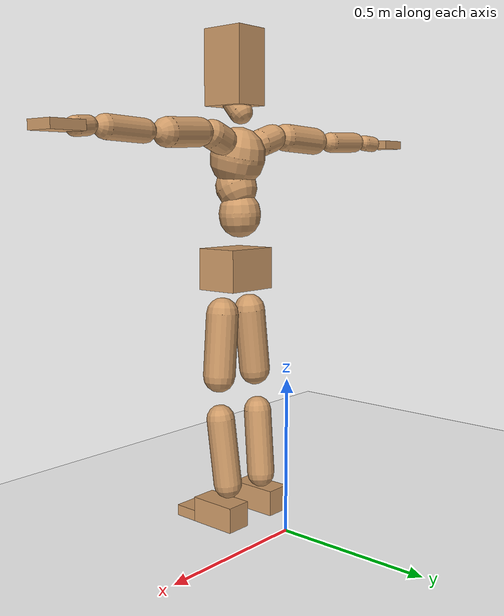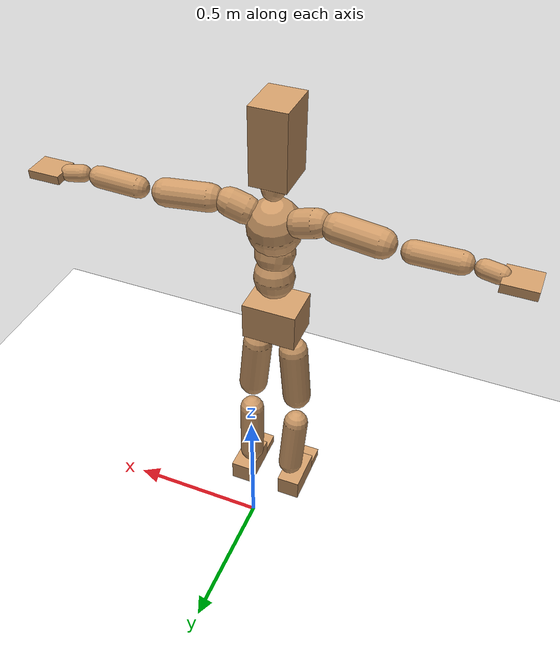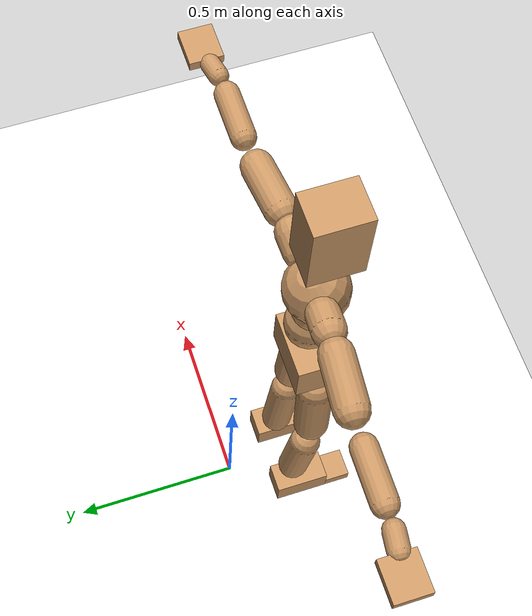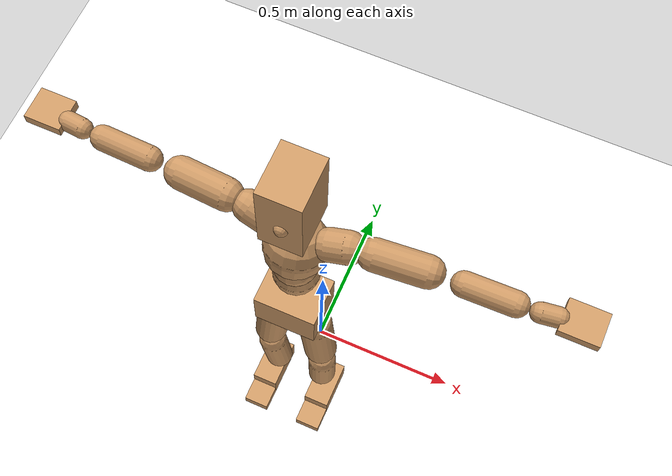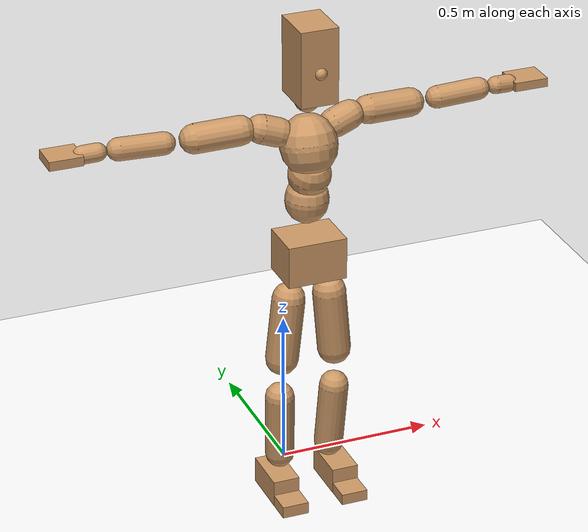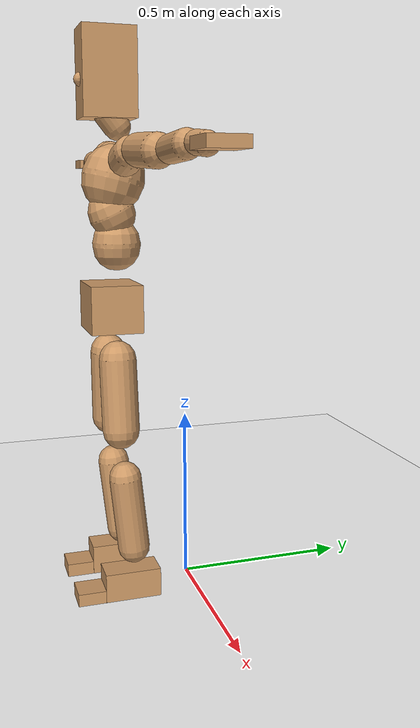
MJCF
<mujoco model="humanoid">
  <option integrator="implicitfast" />

  <visual>
    <global offwidth="1280" offheight="960" />
    <headlight active="1" ambient="0.34 0.34 0.34" diffuse="0.5 0.5 0.5" />
  </visual>

  <default>
    <joint damping="2" stiffness="2" armature="0.01" limited="true" solimplimit="0 .99 .01" />
    <geom condim="1" friction="0.7 0.005 0.0001" solimp=".99 .99 .003" solref="0.015 1" margin="0.001" rgba="0.8 0.6 .4 1" />
    <default class="smplcontact">
      <geom condim="3" friction="1. 0.005 0.0001" solref="0.015 1" solimp="0.98 0.98 0.001" priority="1" />
    </default>
    <default class="stiff_medium">
      <joint stiffness="10" />
    </default>
    <default class="stiff_medium_higher">
      <joint stiffness="50" />
    </default>
    <default class="stiff_high">
      <joint stiffness="100" />
    </default>
  </default>

  <asset>
    <texture type="skybox" builtin="gradient" rgb1="0.99 0.99 0.99" rgb2="0.608 0.828 0.892" width="100" />
    <texture builtin="flat" height="1278" mark="cross" markrgb="1 1 1" name="texgeom" random="0.01" rgb1="0.8 0.6 0.4" rgb2="0.8 0.6 0.4" type="cube" width="127" />
    <texture name="texplane" type="2d" builtin="checker" markrgb="1 1 1" rgb1="0.756 0.772 0.76" rgb2="0.6 0.6 0.6" width="100" height="100" />
    <material name="MatPlane" reflectance="0.5" texture="texplane" texrepeat="1 1" texuniform="true" />
    <material name="geom" texture="texgeom" texuniform="true" />
  </asset>

  <worldbody>
    <light name="tracking_light" pos="0 0 7" dir="0 0 -1" directional="true" cutoff="100" exponent="1" diffuse="1 1 1" specular="0.1 0.1 0.1" mode="trackcom" />
    <camera name="back" pos="0 3 2.4" xyaxes="-1 0 0 0 -1 2" mode="trackcom" />
    <camera name="side" pos="-3 0 2.4" xyaxes="0 -1 0 1 0 2" mode="trackcom" />
    <camera name="front_side" pos="-2.8 -2.8 0.8" xyaxes="0.5 -0.5 0 0.1 0.1 1" mode="trackcom" />
    <geom condim="3" name="floor" pos="0 0 0" rgba="1 1 1 1" size="100 100 .2" type="plane" material="MatPlane" />
    <body name="Pelvis" pos="-0.0018 -0.2233 0.850186" euler="90 0 0">
      <site name="Pelvis" size="0.01" />
      <freejoint name="Pelvis" />
      <geom type="box" pos="0 -0.0113472 -0.00487135" size="0.0946813 0.0677079 0.0735131" quat="1.0000 0.0000 0.0000 0.0000" density="3165.830099" name="Pelvis" />
      <body name="L_Hip" pos="0.0615562 -0.0857133 -0.00602276">
        <joint name="L_Hip_x" type="hinge" pos="0 0 0" axis="1 0 0" stiffness="10" range="-160.0 22.92" class="stiff_medium" damping="15" />
        <joint name="L_Hip_y" type="hinge" pos="0 0 0" axis="0 1 0" stiffness="10" range="-70.0 70.0" class="stiff_medium" damping="10" />
        <joint name="L_Hip_z" type="hinge" pos="0 0 0" axis="0 0 1" stiffness="10" range="-28.65 90.0" class="stiff_medium" damping="10" />
        <geom type="capsule" density="2040.816327" fromto="0.0062476 -0.0679485 -0.000815342 0.0248201 -0.271974 -0.00326148" size="0.0526256" name="L_Hip" />
        <body name="L_Knee" pos="0.0310677 -0.339923 -0.00407682">
          <joint name="L_Knee_x" type="hinge" pos="0 0 0" axis="1 0 0" range="-5.16 171.89" damping="8" />
          <joint name="L_Knee_y" type="hinge" pos="0 0 0" axis="0 1 0" range="-4.58 6.88" damping="8" />
          <joint name="L_Knee_z" type="hinge" pos="0 0 0" axis="0 0 1" range="-6.88 4.58" damping="8" />
          <geom type="capsule" density="1234.567901" fromto="-0.0024478 -0.0721152 -0.00788529 -0.0098768 -0.288462 -0.0317125" size="0.0462934" name="L_Knee" />
          <body name="L_Ankle" pos="-0.0123246 -0.360577 -0.0395977">
            <joint name="L_Ankle_x" type="hinge" pos="0 0 0" axis="1 0 0" range="-45.84 45.84" class="stiff_medium" damping="6" />
            <joint name="L_Ankle_y" type="hinge" pos="0 0 0" axis="0 1 0" range="-74.48 22.92" class="stiff_medium" damping="3" />
            <joint name="L_Ankle_z" type="hinge" pos="0 0 0" axis="0 0 1" range="-4.58 4.58" class="stiff_medium" damping="6" />
            <geom type="box" pos="0.0206368 -0.0211682 0.0228065" size="0.0427793 0.0410965 0.0801054" quat="1.0000 0.0000 0.0000 0.0000" density="449.071558" name="L_Ankle" class="smplcontact" />
            <body name="L_Toe" pos="0.0233825 -0.0494221 0.11243">
              <joint name="L_Toe_x" type="hinge" pos="0 0 0" axis="1 0 0" range="-91.67 22.92" />
              <joint name="L_Toe_y" type="hinge" pos="0 0 0" axis="0 1 0" range="-4.58 4.58" />
              <joint name="L_Toe_z" type="hinge" pos="0 0 0" axis="0 0 1" range="-4.58 4.58" />
              <geom type="box" pos="-0.0026571 0.00487135 0.0233719" size="0.0423365 0.017714 0.0467439" quat="1.0000 0.0000 0.0000 0.0000" density="423.206892" name="L_Toe" class="smplcontact" />
            </body>
          </body>
        </body>
      </body>
      <body name="R_Hip" pos="-0.0599619 -0.0848693 -0.00380851">
        <joint name="R_Hip_x" type="hinge" pos="0 0 0" axis="1 0 0" stiffness="10" range="-160.0 22.92" class="stiff_medium" damping="15" />
        <joint name="R_Hip_y" type="hinge" pos="0 0 0" axis="0 1 0" stiffness="10" range="-70.0 70.0" class="stiff_medium" damping="10" />
        <joint name="R_Hip_z" type="hinge" pos="0 0 0" axis="0 0 1" stiffness="10" range="-90.0 28.65" class="stiff_medium" damping="10" />
        <geom type="capsule" density="2040.816327" fromto="-0.00697253 -0.0693075 -0.00162905 -0.0277194 -0.27732 -0.00643072" size="0.0518554" name="R_Hip" />
        <body name="R_Knee" pos="-0.0346919 -0.346627 -0.00805977">
          <joint name="R_Knee_x" type="hinge" pos="0 0 0" axis="1 0 0" range="-5.16 171.89" damping="8" />
          <joint name="R_Knee_y" type="hinge" pos="0 0 0" axis="0 1 0" range="-6.88 4.58" damping="8" />
          <joint name="R_Knee_z" type="hinge" pos="0 0 0" axis="0 0 1" range="-4.58 6.88" damping="8" />
          <geom type="capsule" density="1234.567901" fromto="0.00289585 -0.0722067 -0.00769767 0.011412 -0.288735 -0.0306188" size="0.0462934" name="R_Knee" />
          <body name="R_Ankle" pos="0.0143079 -0.360942 -0.0383165">
            <joint name="R_Ankle_x" type="hinge" pos="0 0 0" axis="1 0 0" range="-45.84 45.84" class="stiff_medium" damping="6" />
            <joint name="R_Ankle_y" type="hinge" pos="0 0 0" axis="0 1 0" range="-22.92 74.48" class="stiff_medium" damping="3" />
            <joint name="R_Ankle_z" type="hinge" pos="0 0 0" axis="0 0 1" range="-4.58 4.58" class="stiff_medium" damping="6" />
            <geom type="box" pos="-0.0187768 -0.0154112 0.0241259" size="0.0427793 0.0423365 0.0815191" quat="1.0000 0.0000 0.0000 0.0000" density="434.700981" name="R_Ankle" class="smplcontact" />
            <body name="R_Toe" pos="-0.0224968 -0.0426022 0.1162">
              <joint name="R_Toe_x" type="hinge" pos="0 0 0" axis="1 0 0" range="-91.67 22.92" />
              <joint name="R_Toe_y" type="hinge" pos="0 0 0" axis="0 1 0" range="-4.58 4.58" />
              <joint name="R_Toe_z" type="hinge" pos="0 0 0" axis="0 0 1" range="-4.58 4.58" />
              <geom type="box" pos="0.00371994 0.00398565 0.0213929" size="0.042425 0.0191311 0.0464612" quat="1.0000 0.0000 0.0000 0.0000" density="407.384095" name="R_Toe" class="smplcontact" />
            </body>
          </body>
        </body>
      </body>
      <body name="Torso" pos="-0.00221425 0.102218 -0.0236482">
        <joint name="Torso_x" type="hinge" pos="0 0 0" axis="1 0 0" range="-25.78 57.3" class="stiff_medium" damping="15" />
        <joint name="Torso_y" type="hinge" pos="0 0 0" axis="0 1 0" range="-57.3 57.3" class="stiff_high" damping="20" />
        <joint name="Torso_z" type="hinge" pos="0 0 0" axis="0 0 1" range="-34.38 34.38" class="stiff_high" damping="20" />
        <geom type="capsule" density="2040.816327" fromto="0.00233758 0.057165 0.000467515 0.00280768 0.0698577 0.000561536" size="0.0682872" name="Torso" />
        <body name="Spine" pos="0.00514545 0.127117 0.00102909">
          <joint name="Spine_x" type="hinge" pos="0 0 0" axis="1 0 0" stiffness="10" range="-25.78 57.3" class="stiff_medium" damping="15" />
          <joint name="Spine_y" type="hinge" pos="0 0 0" axis="0 1 0" stiffness="10" range="-57.3 57.3" class="stiff_high" damping="8" />
          <joint name="Spine_z" type="hinge" pos="0 0 0" axis="0 0 1" stiffness="20" range="-34.38 34.38" class="stiff_high" damping="12" />
          <geom type="capsule" density="2040.816327" fromto="0.00064494 0.0223714 0.01073 0.00073896 0.0273545 0.0131746" size="0.067044" name="Spine" />
          <body name="Chest" pos="0.0013839 0.0497259 0.0239046">
            <joint name="Chest_x" type="hinge" pos="0 0 0" axis="1 0 0" stiffness="10" range="-25.78 57.3" class="stiff_medium" damping="15" />
            <joint name="Chest_y" type="hinge" pos="0 0 0" axis="0 1 0" stiffness="10" range="-57.3 57.3" class="stiff_high" damping="8" />
            <joint name="Chest_z" type="hinge" pos="0 0 0" axis="0 0 1" stiffness="20" range="-34.38 34.38" class="stiff_high" damping="12" />
            <geom type="capsule" density="2040.816327" fromto="-0.000822753 0.0641182 -0.016281 -0.000916774 0.0783153 -0.0199478" size="0.0889776" name="Chest" />
            <body name="Neck" pos="-0.00255932 0.200954 -0.0409391">
              <joint name="Neck_x" type="hinge" pos="0 0 0" axis="1 0 0" range="-28.65 57.3" class="stiff_medium_higher" damping="10" />
              <joint name="Neck_y" type="hinge" pos="0 0 0" axis="0 1 0" range="-40.11 40.11" class="stiff_medium_higher" damping="10" />
              <joint name="Neck_z" type="hinge" pos="0 0 0" axis="0 0 1" range="-40.11 40.11" class="stiff_medium_higher" damping="10" />
              <geom type="capsule" density="1000" fromto="0.000944218 0.0122522 0.00970575 0.00386571 0.0490064 0.0387322" size="0.0388127" name="Neck" />
              <body name="Head" pos="0.00489877 0.0612563 0.0483471">
                <joint name="Head_x" type="hinge" pos="0 0 0" axis="1 0 0" range="-28.65 57.3" class="stiff_medium_higher" damping="2" />
                <joint name="Head_y" type="hinge" pos="0 0 0" axis="0 1 0" range="-40.11 40.11" class="stiff_medium_higher" damping="2" />
                <joint name="Head_z" type="hinge" pos="0 0 0" axis="0 0 1" range="-40.11 40.11" class="stiff_medium_higher" damping="2" />
                <geom type="box" pos="-0.00416724 0.0920218 -0.0115095" size="0.0601273 0.121225 0.0754072" quat="1.0000 0.0000 0.0000 0.0000" density="1018.069894" name="Head" />
                <geom type="capsule" name="nose" size="0.019844 0.009922" pos="0 0.0735334 0.04961" quat="1 0 0 0" mass="0" contype="0" conaffinity="0" />
              </body>
            </body>
            <body name="L_Thorax" pos="0.0699323 0.114431 -0.0319238">
              <joint name="L_Thorax_x" type="hinge" pos="0 0 0" axis="1 0 0" range="-10.89 4.58" class="stiff_medium_higher" damping="20" />
              <joint name="L_Thorax_y" type="hinge" pos="0 0 0" axis="0 1 0" range="-28.65 17.19" class="stiff_medium_higher" damping="20" />
              <joint name="L_Thorax_z" type="hinge" pos="0 0 0" axis="0 0 1" range="-31.51 40.11" class="stiff_medium_higher" damping="20" />
              <geom type="capsule" density="1000" fromto="0.0170237 0.00570575 -0.00168193 0.0680944 0.0228228 -0.00663934" size="0.0460303" name="L_Thorax" />
              <body name="L_Shoulder" pos="0.0851181 0.0285286 -0.00832128">
                <joint name="L_Shoulder_x" type="hinge" pos="0 0 0" axis="1 0 0" range="-97.4 97.4" class="stiff_medium" damping="6" />
                <joint name="L_Shoulder_y" type="hinge" pos="0 0 0" axis="0 1 0" range="-108.86 80.21" class="stiff_medium" damping="6" />
                <joint name="L_Shoulder_z" type="hinge" pos="0 0 0" axis="0 0 1" range="-97.4 85.94" class="stiff_medium" damping="6" />
                <geom type="capsule" density="1000" fromto="0.0477473 -0.00238848 -0.00505975 0.191081 -0.00938035 -0.0202395" size="0.0449221" name="L_Shoulder" />
                <body name="L_Elbow" pos="0.238828 -0.0117688 -0.0252992">
                  <joint name="L_Elbow_x" type="hinge" pos="0 0 0" axis="1 0 0" range="-17.19 4.58" damping="5" />
                  <joint name="L_Elbow_y" type="hinge" pos="0 0 0" axis="0 1 0" range="-180.0 17.19" damping="5" />
                  <joint name="L_Elbow_z" type="hinge" pos="0 0 0" axis="0 0 1" range="-100.84 4.58" damping="5" />
                  <geom type="capsule" density="1000" fromto="0.0458152 0.00165585 -0.000185684 0.183445 0.00662376 -0.000829672" size="0.0351904" name="L_Elbow" />
                  <body name="L_Wrist" pos="0.22926 0.00827961 -0.00110225">
                    <joint name="L_Wrist_x" type="hinge" pos="0 0 0" axis="1 0 0" range="-180.0 22.92" />
                    <joint name="L_Wrist_y" type="hinge" pos="0 0 0" axis="0 1 0" range="-17.19 17.19" />
                    <joint name="L_Wrist_z" type="hinge" pos="0 0 0" axis="0 0 1" range="-22.92 22.92" />
                    <geom type="capsule" density="1000" fromto="0.0154556 -0.00147366 -0.00275992 0.0618227 -0.00598158 -0.0110398" size="0.027631" name="L_Wrist" class="smplcontact" />
                    <body name="L_Hand" pos="0.0772779 -0.00754209 -0.0137127">
                      <joint name="L_Hand_x" type="hinge" pos="0 0 0" axis="1 0 0" range="-17.19 17.19" />
                      <joint name="L_Hand_y" type="hinge" pos="0 0 0" axis="0 1 0" range="-51.57 51.57" />
                      <joint name="L_Hand_z" type="hinge" pos="0 0 0" axis="0 0 1" range="-91.67 91.67" />
                      <geom type="box" pos="0.0462327 0.0008857 -0.00513706" size="0.0548603 0.0139941 0.0476507" quat="1.0000 0.0000 0.0000 0.0000" density="400.552564" name="L_Hand" class="smplcontact" />
                    </body>
                  </body>
                </body>
              </body>
            </body>
            <body name="R_Thorax" pos="-0.0726803 0.111823 -0.0359113">
              <joint name="R_Thorax_x" type="hinge" pos="0 0 0" axis="1 0 0" range="-10.89 4.58" class="stiff_medium_higher" damping="20" />
              <joint name="R_Thorax_y" type="hinge" pos="0 0 0" axis="0 1 0" range="-17.19 28.65" class="stiff_medium_higher" damping="20" />
              <joint name="R_Thorax_z" type="hinge" pos="0 0 0" axis="0 0 1" range="-40.11 31.51" class="stiff_medium_higher" damping="20" />
              <geom type="capsule" density="1000" fromto="-0.0179588 0.00607979 -0.00168536 -0.0718355 0.0243193 -0.00682984" size="0.0451468" name="R_Thorax" />
              <body name="R_Shoulder" pos="-0.0897959 0.030488 -0.00851536">
                <joint name="R_Shoulder_x" type="hinge" pos="0 0 0" axis="1 0 0" range="-97.4 97.4" class="stiff_medium" damping="6" />
                <joint name="R_Shoulder_y" type="hinge" pos="0 0 0" axis="0 1 0" range="-80.21 108.86" class="stiff_medium" damping="6" />
                <joint name="R_Shoulder_z" type="hinge" pos="0 0 0" axis="0 0 1" range="-85.94 97.4" class="stiff_medium" damping="6" />
                <geom type="capsule" density="1000" fromto="-0.0466434 -0.00248209 -0.00395396 -0.186757 -0.00984195 -0.0157297" size="0.0461386" name="R_Shoulder" />
                <body name="R_Elbow" pos="-0.2334 -0.0122371 -0.0196837">
                  <joint name="R_Elbow_x" type="hinge" pos="0 0 0" axis="1 0 0" range="-17.19 4.58" damping="5" />
                  <joint name="R_Elbow_y" type="hinge" pos="0 0 0" axis="0 1 0" range="-17.19 180.0" damping="5" />
                  <joint name="R_Elbow_z" type="hinge" pos="0 0 0" axis="0 0 1" range="-4.58 100.84" damping="5" />
                  <geom type="capsule" density="1000" fromto="-0.0470112 0.00146867 -0.00101206 -0.187861 0.0057006 -0.004048" size="0.0354511" name="R_Elbow" />
                  <body name="R_Wrist" pos="-0.234872 0.00716927 -0.00514695">
                    <joint name="R_Wrist_x" type="hinge" pos="0 0 0" axis="1 0 0" range="-180.0 22.92" />
                    <joint name="R_Wrist_y" type="hinge" pos="0 0 0" axis="0 1 0" range="-17.19 17.19" />
                    <joint name="R_Wrist_z" type="hinge" pos="0 0 0" axis="0 0 1" range="-22.92 22.92" />
                    <geom type="capsule" density="1000" fromto="-0.0155478 -0.00110557 -0.00193007 -0.062283 -0.00450951 -0.00763397" size="0.0283261" name="R_Wrist" class="smplcontact" />
                    <body name="R_Hand" pos="-0.0778302 -0.00561503 -0.00947707">
                      <joint name="R_Hand_x" type="hinge" pos="0 0 0" axis="1 0 0" range="-17.19 17.19" />
                      <joint name="R_Hand_y" type="hinge" pos="0 0 0" axis="0 1 0" range="-51.57 51.57" />
                      <joint name="R_Hand_z" type="hinge" pos="0 0 0" axis="0 0 1" range="-91.67 91.67" />
                      <geom type="box" pos="-0.0433256 -0.00079713 -0.00699703" size="0.0533598 0.0145255 0.0483592" quat="1.0000 0.0000 0.0000 0.0000" density="403.679611" name="R_Hand" class="smplcontact" />
                    </body>
                  </body>
                </body>
              </body>
            </body>
          </body>
        </body>
      </body>
    </body>
  </worldbody>
  <actuator>
    <general name="L_Hip_x" joint="L_Hip_x" biastype="affine" gainprm="287.33006409732246" biasprm="-215.3247604770444 -180 -2.0" ctrllimited="true" ctrlrange="-1 1" forcerange="-360 360" />
    <general name="L_Hip_y" joint="L_Hip_y" biastype="affine" gainprm="219.9114857512855" biasprm="0.0 -180 -2.0" ctrllimited="true" ctrlrange="-1 1" forcerange="-360 360" />
    <general name="L_Hip_z" joint="L_Hip_z" biastype="affine" gainprm="186.3749841742145" biasprm="96.3683546488669 -180 -2.0" ctrllimited="true" ctrlrange="-1 1" forcerange="-360 360" />
    <general name="L_Knee_x" joint="L_Knee_x" biastype="affine" gainprm="278.10948965903646" biasprm="261.8988715665131 -180 -2.0" ctrllimited="true" ctrlrange="-1 1" forcerange="-360 360" />
    <general name="L_Knee_y" joint="L_Knee_y" biastype="affine" gainprm="18.001325905069514" biasprm="3.612831551628262 -180 -2.0" ctrllimited="true" ctrlrange="-1 1" forcerange="-360 360" />
    <general name="L_Knee_z" joint="L_Knee_z" biastype="affine" gainprm="18.001325905069514" biasprm="-3.612831551628262 -180 -2.0" ctrllimited="true" ctrlrange="-1 1" forcerange="-360 360" />
    <general name="L_Ankle_x" joint="L_Ankle_x" biastype="affine" gainprm="72.00530362027807" biasprm="0.0 -90 -2.0" ctrllimited="true" ctrlrange="-1 1" forcerange="-180 180" />
    <general name="L_Ankle_y" joint="L_Ankle_y" biastype="affine" gainprm="76.49778111491148" biasprm="-40.49512930477244 -90 -2.0" ctrllimited="true" ctrlrange="-1 1" forcerange="-180 180" />
    <general name="L_Ankle_z" joint="L_Ankle_z" biastype="affine" gainprm="7.1942471767206255" biasprm="0.0 -90 -2.0" ctrllimited="true" ctrlrange="-1 1" forcerange="-180 180" />
    <general name="L_Toe_x" joint="L_Toe_x" biastype="affine" gainprm="71.99902043497087" biasprm="-43.19689898685965 -72 -0.8" ctrllimited="true" ctrlrange="-1 1" forcerange="-144 144" />
    <general name="L_Toe_y" joint="L_Toe_y" biastype="affine" gainprm="5.755397741376501" biasprm="0.0 -72 -0.8" ctrllimited="true" ctrlrange="-1 1" forcerange="-144 144" />
    <general name="L_Toe_z" joint="L_Toe_z" biastype="affine" gainprm="5.755397741376501" biasprm="0.0 -72 -0.8" ctrllimited="true" ctrlrange="-1 1" forcerange="-144 144" />
    <general name="R_Hip_x" joint="R_Hip_x" biastype="affine" gainprm="287.33006409732246" biasprm="-215.3247604770444 -180 -2.0" ctrllimited="true" ctrlrange="-1 1" forcerange="-360 360" />
    <general name="R_Hip_y" joint="R_Hip_y" biastype="affine" gainprm="219.9114857512855" biasprm="0.0 -180 -2.0" ctrllimited="true" ctrlrange="-1 1" forcerange="-360 360" />
    <general name="R_Hip_z" joint="R_Hip_z" biastype="affine" gainprm="186.3749841742145" biasprm="-96.3683546488669 -180 -2.0" ctrllimited="true" ctrlrange="-1 1" forcerange="-360 360" />
    <general name="R_Knee_x" joint="R_Knee_x" biastype="affine" gainprm="278.10948965903646" biasprm="261.8988715665131 -180 -2.0" ctrllimited="true" ctrlrange="-1 1" forcerange="-360 360" />
    <general name="R_Knee_y" joint="R_Knee_y" biastype="affine" gainprm="18.001325905069514" biasprm="-3.612831551628262 -180 -2.0" ctrllimited="true" ctrlrange="-1 1" forcerange="-360 360" />
    <general name="R_Knee_z" joint="R_Knee_z" biastype="affine" gainprm="18.001325905069514" biasprm="3.612831551628262 -180 -2.0" ctrllimited="true" ctrlrange="-1 1" forcerange="-360 360" />
    <general name="R_Ankle_x" joint="R_Ankle_x" biastype="affine" gainprm="72.00530362027807" biasprm="0.0 -90 -2.0" ctrllimited="true" ctrlrange="-1 1" forcerange="-180 180" />
    <general name="R_Ankle_y" joint="R_Ankle_y" biastype="affine" gainprm="76.49778111491148" biasprm="40.49512930477244 -90 -2.0" ctrllimited="true" ctrlrange="-1 1" forcerange="-180 180" />
    <general name="R_Ankle_z" joint="R_Ankle_z" biastype="affine" gainprm="7.1942471767206255" biasprm="0.0 -90 -2.0" ctrllimited="true" ctrlrange="-1 1" forcerange="-180 180" />
    <general name="R_Toe_x" joint="R_Toe_x" biastype="affine" gainprm="71.99902043497087" biasprm="-43.19689898685965 -72 -0.8" ctrllimited="true" ctrlrange="-1 1" forcerange="-144 144" />
    <general name="R_Toe_y" joint="R_Toe_y" biastype="affine" gainprm="5.755397741376501" biasprm="0.0 -72 -0.8" ctrllimited="true" ctrlrange="-1 1" forcerange="-144 144" />
    <general name="R_Toe_z" joint="R_Toe_z" biastype="affine" gainprm="5.755397741376501" biasprm="0.0 -72 -0.8" ctrllimited="true" ctrlrange="-1 1" forcerange="-144 144" />
    <general name="Torso_x" joint="Torso_x" biastype="affine" gainprm="174.00234510682668" biasprm="66.0153336274335 -240 -4.0" ctrllimited="true" ctrlrange="-1 1" forcerange="-360 360" />
    <general name="Torso_y" joint="Torso_y" biastype="affine" gainprm="240.0176787342602" biasprm="0.0 -240 -4.0" ctrllimited="true" ctrlrange="-1 1" forcerange="-360 360" />
    <general name="Torso_z" joint="Torso_z" biastype="affine" gainprm="144.01060724055614" biasprm="0.0 -240 -4.0" ctrllimited="true" ctrlrange="-1 1" forcerange="-360 360" />
    <general name="Spine_x" joint="Spine_x" biastype="affine" gainprm="174.00234510682668" biasprm="66.0153336274335 -240 -4.0" ctrllimited="true" ctrlrange="-1 1" forcerange="-360 360" />
    <general name="Spine_y" joint="Spine_y" biastype="affine" gainprm="240.0176787342602" biasprm="0.0 -240 -4.0" ctrllimited="true" ctrlrange="-1 1" forcerange="-360 360" />
    <general name="Spine_z" joint="Spine_z" biastype="affine" gainprm="144.01060724055614" biasprm="0.0 -240 -4.0" ctrllimited="true" ctrlrange="-1 1" forcerange="-360 360" />
    <general name="Chest_x" joint="Chest_x" biastype="affine" gainprm="174.00234510682668" biasprm="66.0153336274335 -240 -4.0" ctrllimited="true" ctrlrange="-1 1" forcerange="-360 360" />
    <general name="Chest_y" joint="Chest_y" biastype="affine" gainprm="240.0176787342602" biasprm="0.0 -240 -4.0" ctrllimited="true" ctrlrange="-1 1" forcerange="-360 360" />
    <general name="Chest_z" joint="Chest_z" biastype="affine" gainprm="144.01060724055614" biasprm="0.0 -240 -4.0" ctrllimited="true" ctrlrange="-1 1" forcerange="-360 360" />
    <general name="Neck_x" joint="Neck_x" biastype="affine" gainprm="27.00198885760427" biasprm="9.000662952534757 -36 -0.8" ctrllimited="true" ctrlrange="-1 1" forcerange="-72 72" />
    <general name="Neck_y" joint="Neck_y" biastype="affine" gainprm="25.20185626709732" biasprm="0.0 -36 -0.8" ctrllimited="true" ctrlrange="-1 1" forcerange="-72 72" />
    <general name="Neck_z" joint="Neck_z" biastype="affine" gainprm="25.20185626709732" biasprm="0.0 -36 -0.8" ctrllimited="true" ctrlrange="-1 1" forcerange="-72 72" />
    <general name="Head_x" joint="Head_x" biastype="affine" gainprm="18.001325905069514" biasprm="6.000441968356505 -24 -0.8" ctrllimited="true" ctrlrange="-1 1" forcerange="-48 48" />
    <general name="Head_y" joint="Head_y" biastype="affine" gainprm="16.801237511398213" biasprm="0.0 -24 -0.8" ctrllimited="true" ctrlrange="-1 1" forcerange="-48 48" />
    <general name="Head_z" joint="Head_z" biastype="affine" gainprm="16.801237511398213" biasprm="0.0 -24 -0.8" ctrllimited="true" ctrlrange="-1 1" forcerange="-48 48" />
    <general name="L_Thorax_x" joint="L_Thorax_x" biastype="affine" gainprm="16.200146117011364" biasprm="-6.6078165480505335 -120 -1.6" ctrllimited="true" ctrlrange="-1 1" forcerange="-240 240" />
    <general name="L_Thorax_y" joint="L_Thorax_y" biastype="affine" gainprm="48.00353574685204" biasprm="-12.00088393671301 -120 -1.6" ctrllimited="true" ctrlrange="-1 1" forcerange="-240 240" />
    <general name="L_Thorax_z" joint="L_Thorax_z" biastype="affine" gainprm="75.00028861670033" biasprm="9.00589894029074 -120 -1.6" ctrllimited="true" ctrlrange="-1 1" forcerange="-240 240" />
    <general name="L_Shoulder_x" joint="L_Shoulder_x" biastype="affine" gainprm="81.5976331892389" biasprm="0.0 -48 -1.6" ctrllimited="true" ctrlrange="-1 1" forcerange="-96 96" />
    <general name="L_Shoulder_y" joint="L_Shoulder_y" biastype="affine" gainprm="79.19745640189629" biasprm="-12.00088393671301 -48 -1.6" ctrllimited="true" ctrlrange="-1 1" forcerange="-96 96" />
    <general name="L_Shoulder_z" joint="L_Shoulder_z" biastype="affine" gainprm="76.79727961455369" biasprm="-4.800353574685214 -48 -1.6" ctrllimited="true" ctrlrange="-1 1" forcerange="-96 96" />
    <general name="L_Elbow_x" joint="L_Elbow_x" biastype="affine" gainprm="13.67849441372996" biasprm="-7.923096672353461 -72 -0.8" ctrllimited="true" ctrlrange="-1 1" forcerange="-144 144" />
    <general name="L_Elbow_y" joint="L_Elbow_y" biastype="affine" gainprm="123.89813107227425" biasprm="-102.29653998619085 -72 -0.8" ctrllimited="true" ctrlrange="-1 1" forcerange="-144 144" />
    <general name="L_Elbow_z" joint="L_Elbow_z" biastype="affine" gainprm="66.23733950828719" biasprm="-60.4819417669107 -72 -0.8" ctrllimited="true" ctrlrange="-1 1" forcerange="-144 144" />
    <general name="L_Wrist_x" joint="L_Wrist_x" biastype="affine" gainprm="21.24973270888136" biasprm="-16.449379134196157 -12 -0.8" ctrllimited="true" ctrlrange="-1 1" forcerange="-24 24" />
    <general name="L_Wrist_y" joint="L_Wrist_y" biastype="affine" gainprm="3.6002651810139037" biasprm="0.0 -12 -0.8" ctrllimited="true" ctrlrange="-1 1" forcerange="-24 24" />
    <general name="L_Wrist_z" joint="L_Wrist_z" biastype="affine" gainprm="4.800353574685205" biasprm="0.0 -12 -0.8" ctrllimited="true" ctrlrange="-1 1" forcerange="-24 24" />
    <general name="L_Hand_x" joint="L_Hand_x" biastype="affine" gainprm="3.6002651810139037" biasprm="0.0 -12 -0.8" ctrllimited="true" ctrlrange="-1 1" forcerange="-24 24" />
    <general name="L_Hand_y" joint="L_Hand_y" biastype="affine" gainprm="10.800795543041708" biasprm="0.0 -12 -0.8" ctrllimited="true" ctrlrange="-1 1" forcerange="-24 24" />
    <general name="L_Hand_z" joint="L_Hand_z" biastype="affine" gainprm="19.199319903638422" biasprm="0.0 -12 -0.8" ctrllimited="true" ctrlrange="-1 1" forcerange="-24 24" />
    <general name="R_Thorax_x" joint="R_Thorax_x" biastype="affine" gainprm="16.200146117011364" biasprm="-6.6078165480505335 -120 -1.6" ctrllimited="true" ctrlrange="-1 1" forcerange="-240 240" />
    <general name="R_Thorax_y" joint="R_Thorax_y" biastype="affine" gainprm="48.00353574685204" biasprm="12.000883936713002 -120 -1.6" ctrllimited="true" ctrlrange="-1 1" forcerange="-240 240" />
    <general name="R_Thorax_z" joint="R_Thorax_z" biastype="affine" gainprm="75.00028861670033" biasprm="-9.00589894029074 -120 -1.6" ctrllimited="true" ctrlrange="-1 1" forcerange="-240 240" />
    <general name="R_Shoulder_x" joint="R_Shoulder_x" biastype="affine" gainprm="81.5976331892389" biasprm="0.0 -48 -1.6" ctrllimited="true" ctrlrange="-1 1" forcerange="-96 96" />
    <general name="R_Shoulder_y" joint="R_Shoulder_y" biastype="affine" gainprm="79.19745640189629" biasprm="12.00088393671301 -48 -1.6" ctrllimited="true" ctrlrange="-1 1" forcerange="-96 96" />
    <general name="R_Shoulder_z" joint="R_Shoulder_z" biastype="affine" gainprm="76.79727961455369" biasprm="4.800353574685204 -48 -1.6" ctrllimited="true" ctrlrange="-1 1" forcerange="-96 96" />
    <general name="R_Elbow_x" joint="R_Elbow_x" biastype="affine" gainprm="13.67849441372996" biasprm="-7.923096672353461 -72 -0.8" ctrllimited="true" ctrlrange="-1 1" forcerange="-144 144" />
    <general name="R_Elbow_y" joint="R_Elbow_y" biastype="affine" gainprm="123.89813107227425" biasprm="102.29653998619085 -72 -0.8" ctrllimited="true" ctrlrange="-1 1" forcerange="-144 144" />
    <general name="R_Elbow_z" joint="R_Elbow_z" biastype="affine" gainprm="66.23733950828719" biasprm="60.481941766910694 -72 -0.8" ctrllimited="true" ctrlrange="-1 1" forcerange="-144 144" />
    <general name="R_Wrist_x" joint="R_Wrist_x" biastype="affine" gainprm="21.24973270888136" biasprm="-16.449379134196157 -12 -0.8" ctrllimited="true" ctrlrange="-1 1" forcerange="-24 24" />
    <general name="R_Wrist_y" joint="R_Wrist_y" biastype="affine" gainprm="3.6002651810139037" biasprm="0.0 -12 -0.8" ctrllimited="true" ctrlrange="-1 1" forcerange="-24 24" />
    <general name="R_Wrist_z" joint="R_Wrist_z" biastype="affine" gainprm="4.800353574685205" biasprm="0.0 -12 -0.8" ctrllimited="true" ctrlrange="-1 1" forcerange="-24 24" />
    <general name="R_Hand_x" joint="R_Hand_x" biastype="affine" gainprm="3.6002651810139037" biasprm="0.0 -12 -0.8" ctrllimited="true" ctrlrange="-1 1" forcerange="-24 24" />
    <general name="R_Hand_y" joint="R_Hand_y" biastype="affine" gainprm="10.800795543041708" biasprm="0.0 -12 -0.8" ctrllimited="true" ctrlrange="-1 1" forcerange="-24 24" />
    <general name="R_Hand_z" joint="R_Hand_z" biastype="affine" gainprm="19.199319903638422" biasprm="0.0 -12 -0.8" ctrllimited="true" ctrlrange="-1 1" forcerange="-24 24" />
  </actuator>
  <contact>
    <exclude body1="Torso" body2="Chest" />
    <exclude body1="Head" body2="Chest" />
    <exclude body1="R_Knee" body2="R_Toe" />
    <exclude body1="R_Knee" body2="L_Ankle" />
    <exclude body1="R_Knee" body2="L_Toe" />
    <exclude body1="L_Knee" body2="L_Toe" />
    <exclude body1="L_Knee" body2="R_Ankle" />
    <exclude body1="L_Knee" body2="R_Toe" />
    <exclude body1="L_Shoulder" body2="Chest" />
    <exclude body1="R_Shoulder" body2="Chest" />
  </contact>
  <sensor>
    <framelinvel name="sensor_Pelvis_framelinvel" objtype="xbody" objname="Pelvis" />
    <framelinvel name="sensor_L_Hip_framelinvel" objtype="xbody" objname="L_Hip" />
    <framelinvel name="sensor_L_Knee_framelinvel" objtype="xbody" objname="L_Knee" />
    <framelinvel name="sensor_L_Ankle_framelinvel" objtype="xbody" objname="L_Ankle" />
    <framelinvel name="sensor_L_Toe_framelinvel" objtype="xbody" objname="L_Toe" />
    <framelinvel name="sensor_R_Hip_framelinvel" objtype="xbody" objname="R_Hip" />
    <framelinvel name="sensor_R_Knee_framelinvel" objtype="xbody" objname="R_Knee" />
    <framelinvel name="sensor_R_Ankle_framelinvel" objtype="xbody" objname="R_Ankle" />
    <framelinvel name="sensor_R_Toe_framelinvel" objtype="xbody" objname="R_Toe" />
    <framelinvel name="sensor_Torso_framelinvel" objtype="xbody" objname="Torso" />
    <framelinvel name="sensor_Spine_framelinvel" objtype="xbody" objname="Spine" />
    <framelinvel name="sensor_Chest_framelinvel" objtype="xbody" objname="Chest" />
    <framelinvel name="sensor_Neck_framelinvel" objtype="xbody" objname="Neck" />
    <framelinvel name="sensor_Head_framelinvel" objtype="xbody" objname="Head" />
    <framelinvel name="sensor_L_Thorax_framelinvel" objtype="xbody" objname="L_Thorax" />
    <framelinvel name="sensor_L_Shoulder_framelinvel" objtype="xbody" objname="L_Shoulder" />
    <framelinvel name="sensor_L_Elbow_framelinvel" objtype="xbody" objname="L_Elbow" />
    <framelinvel name="sensor_L_Wrist_framelinvel" objtype="xbody" objname="L_Wrist" />
    <framelinvel name="sensor_L_Hand_framelinvel" objtype="xbody" objname="L_Hand" />
    <framelinvel name="sensor_R_Thorax_framelinvel" objtype="xbody" objname="R_Thorax" />
    <framelinvel name="sensor_R_Shoulder_framelinvel" objtype="xbody" objname="R_Shoulder" />
    <framelinvel name="sensor_R_Elbow_framelinvel" objtype="xbody" objname="R_Elbow" />
    <framelinvel name="sensor_R_Wrist_framelinvel" objtype="xbody" objname="R_Wrist" />
    <framelinvel name="sensor_R_Hand_framelinvel" objtype="xbody" objname="R_Hand" />
    <frameangvel name="sensor_Pelvis_frameangvel" objtype="xbody" objname="Pelvis" />
    <frameangvel name="sensor_L_Hip_frameangvel" objtype="xbody" objname="L_Hip" />
    <frameangvel name="sensor_L_Knee_frameangvel" objtype="xbody" objname="L_Knee" />
    <frameangvel name="sensor_L_Ankle_frameangvel" objtype="xbody" objname="L_Ankle" />
    <frameangvel name="sensor_L_Toe_frameangvel" objtype="xbody" objname="L_Toe" />
    <frameangvel name="sensor_R_Hip_frameangvel" objtype="xbody" objname="R_Hip" />
    <frameangvel name="sensor_R_Knee_frameangvel" objtype="xbody" objname="R_Knee" />
    <frameangvel name="sensor_R_Ankle_frameangvel" objtype="xbody" objname="R_Ankle" />
    <frameangvel name="sensor_R_Toe_frameangvel" objtype="xbody" objname="R_Toe" />
    <frameangvel name="sensor_Torso_frameangvel" objtype="xbody" objname="Torso" />
    <frameangvel name="sensor_Spine_frameangvel" objtype="xbody" objname="Spine" />
    <frameangvel name="sensor_Chest_frameangvel" objtype="xbody" objname="Chest" />
    <frameangvel name="sensor_Neck_frameangvel" objtype="xbody" objname="Neck" />
    <frameangvel name="sensor_Head_frameangvel" objtype="xbody" objname="Head" />
    <frameangvel name="sensor_L_Thorax_frameangvel" objtype="xbody" objname="L_Thorax" />
    <frameangvel name="sensor_L_Shoulder_frameangvel" objtype="xbody" objname="L_Shoulder" />
    <frameangvel name="sensor_L_Elbow_frameangvel" objtype="xbody" objname="L_Elbow" />
    <frameangvel name="sensor_L_Wrist_frameangvel" objtype="xbody" objname="L_Wrist" />
    <frameangvel name="sensor_L_Hand_frameangvel" objtype="xbody" objname="L_Hand" />
    <frameangvel name="sensor_R_Thorax_frameangvel" objtype="xbody" objname="R_Thorax" />
    <frameangvel name="sensor_R_Shoulder_frameangvel" objtype="xbody" objname="R_Shoulder" />
    <frameangvel name="sensor_R_Elbow_frameangvel" objtype="xbody" objname="R_Elbow" />
    <frameangvel name="sensor_R_Wrist_frameangvel" objtype="xbody" objname="R_Wrist" />
    <frameangvel name="sensor_R_Hand_frameangvel" objtype="xbody" objname="R_Hand" />
    <subtreelinvel name="Chest_subtreelinvel" body="Chest" />
    <gyro name="Pelvis_gyro" site="Pelvis" />
  </sensor>
</mujoco>
